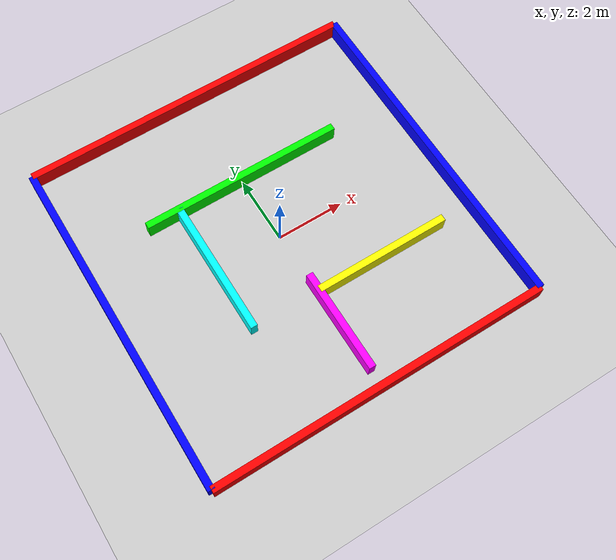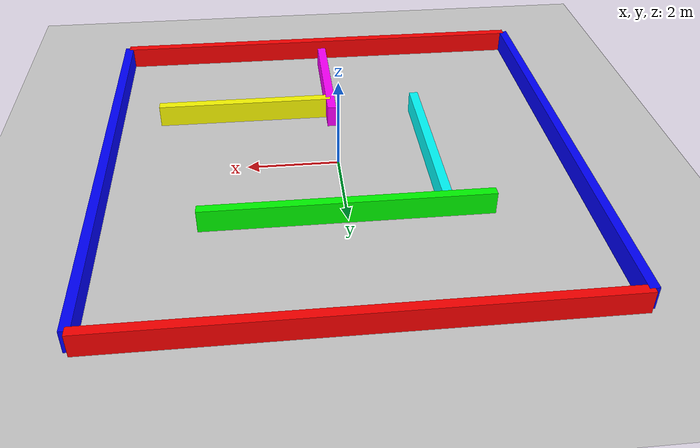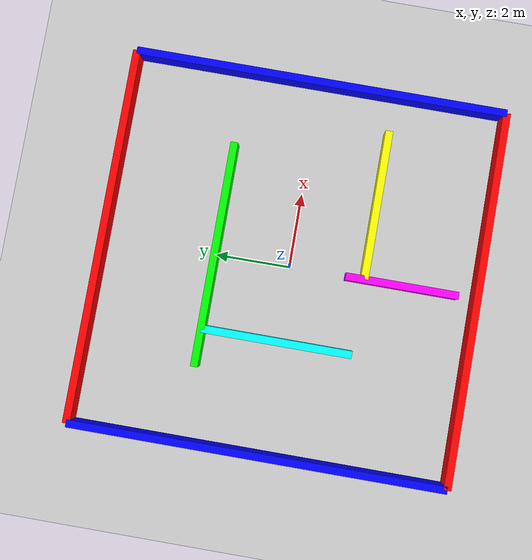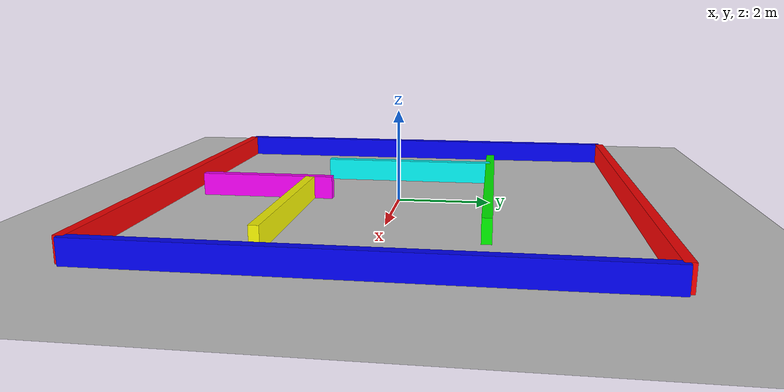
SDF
<?xml version="1.0" ?>
<sdf version="1.7">
  <world name="new_world">

    <!-- Plugins necesarios para ROS -->
    <plugin name="gazebo_ros" filename="libgazebo_ros_init.so"/>
    <plugin name="gazebo_ros_factory" filename="libgazebo_ros_factory.so"/>

    <!-- Suelo -->
    <include>
      <uri>model://ground_plane</uri>
    </include>

    <!-- Sol -->
    <include>
      <uri>model://sun</uri>
    </include>

    <!-- Laberinto -->
    <model name="laberinto">
      <!-- Paredes exteriores -->
      <link name="wall_norte">
        <pose>0 5 0.25 0 0 0</pose>
        <collision name="coll_norte">
          <geometry>
            <box><size>10 0.2 0.5</size></box>
          </geometry>
        </collision>
        <visual name="vis_norte">
          <geometry>
            <box><size>10 0.2 0.5</size></box>
          </geometry>
          <material><ambient>1 0 0 1</ambient></material>
        </visual>
        <static>1</static>
      </link>

      <link name="wall_sur">
        <pose>0 -5 0.25 0 0 0</pose>
        <collision name="coll_sur">
          <geometry>
            <box><size>10 0.2 0.5</size></box>
          </geometry>
        </collision>
        <visual name="vis_sur">
          <geometry>
            <box><size>10 0.2 0.5</size></box>
          </geometry>
          <material><ambient>1 0 0 1</ambient></material>
        </visual>
        <static>1</static>
      </link>

      <link name="wall_este">
        <pose>5 0 0.25 0 0 0</pose>
        <collision name="coll_este">
          <geometry>
            <box><size>0.2 10 0.5</size></box>
          </geometry>
        </collision>
        <visual name="vis_este">
          <geometry>
            <box><size>0.2 10 0.5</size></box>
          </geometry>
          <material><ambient>0 0 1 1</ambient></material>
        </visual>
        <static>1</static>
      </link>

      <link name="wall_oeste">
        <pose>-5 0 0.25 0 0 0</pose>
        <collision name="coll_oeste">
          <geometry>
            <box><size>0.2 10 0.5</size></box>
          </geometry>
        </collision>
        <visual name="vis_oeste">
          <geometry>
            <box><size>0.2 10 0.5</size></box>
          </geometry>
          <material><ambient>0 0 1 1</ambient></material>
        </visual>
        <static>1</static>
      </link>

      <!-- Paredes internas (laberinto) -->
      <link name="wall_int_1">
        <pose>0 2 0.25 0 0 0</pose>
        <collision name="coll_int_1">
          <geometry>
            <box><size>6 0.2 0.5</size></box>
          </geometry>
        </collision>
        <visual name="vis_int_1">
          <geometry>
            <box><size>6 0.2 0.5</size></box>
          </geometry>
          <material><ambient>0 1 0 1</ambient></material>
        </visual>
        <static>1</static>
      </link>

      <link name="wall_int_2">
        <pose>-2 0 0.25 0 0 1.57</pose>
        <collision name="coll_int_2">
          <geometry>
            <box><size>4 0.2 0.5</size></box>
          </geometry>
        </collision>
        <visual name="vis_int_2">
          <geometry>
            <box><size>4 0.2 0.5</size></box>
          </geometry>
          <material><ambient>0 1 1 1</ambient></material>
        </visual>
        <static>1</static>
      </link>

      <link name="wall_int_3">
        <pose>2 -2 0.25 0 0 0</pose>
        <collision name="coll_int_3">
          <geometry>
            <box><size>4 0.2 0.5</size></box>
          </geometry>
        </collision>
        <visual name="vis_int_3">
          <geometry>
            <box><size>4 0.2 0.5</size></box>
          </geometry>
          <material><ambient>1 1 0 1</ambient></material>
        </visual>
        <static>1</static>
      </link>

      <link name="wall_int_4">
        <pose>0 -3 0.25 0 0 1.57</pose>
        <collision name="coll_int_4">
          <geometry>
            <box><size>3 0.2 0.5</size></box>
          </geometry>
        </collision>
        <visual name="vis_int_4">
          <geometry>
            <box><size>3 0.2 0.5</size></box>
          </geometry>
          <material><ambient>1 0 1 1</ambient></material>
        </visual>
        <static>1</static>
      </link>

    </model>

  </world>
</sdf>
